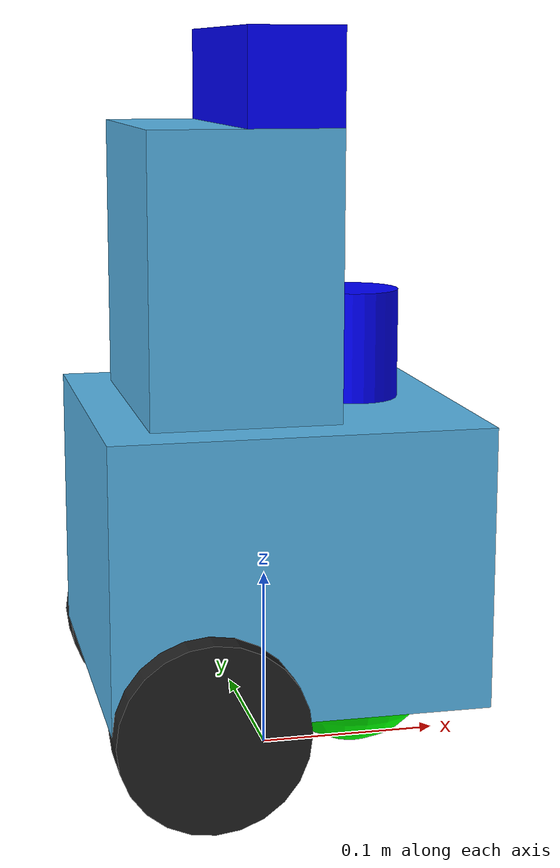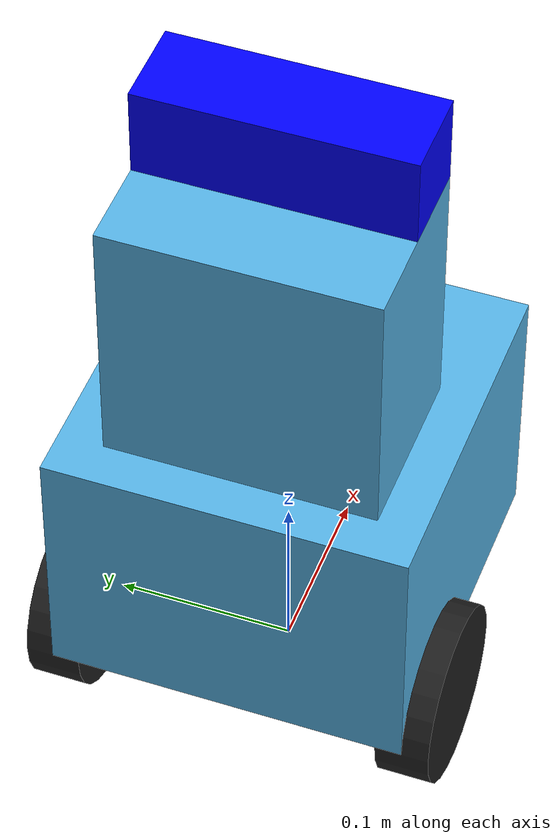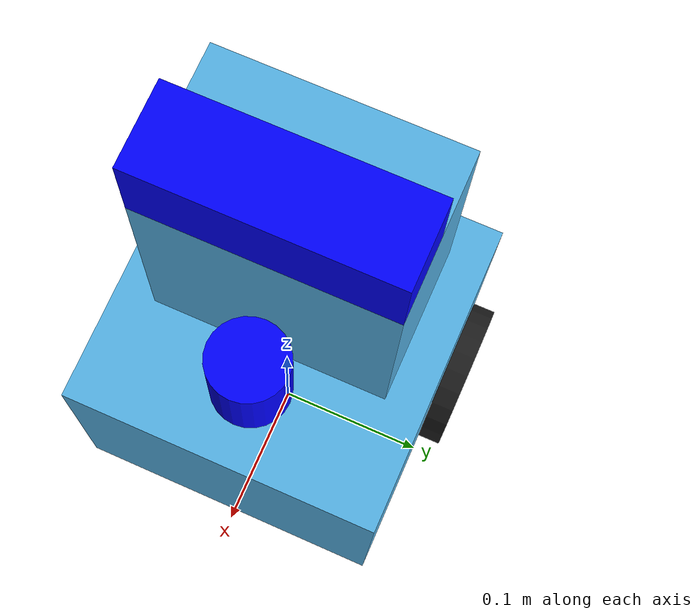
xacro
<?xml version="1.0"?>
<robot name="my_robo" xmlns:xacro="http://ros.org/wiki/xacro">

 <link name="base_footprint"/>

 <joint name="base_link_joint" type="fixed">
   <parent link="base_footprint"/>
   <child link="base_link"/>
   <origin xyz="0 0 0.125"/>
 </joint>

   <link name="base_link">
    <visual>
      <geometry>
        <box size="0.200 0.200 0.15"/>
      </geometry>
    </visual>

    <visual name="upper_base">
      <geometry>
        <box size="0.1 0.15 0.15"/>
      </geometry>
      <origin xyz="-0.025 0 0.15" rpy="0 0 0"/>
    </visual>

   <collision>
      <geometry>
        <box size="0.200 0.200 0.30"/>
      </geometry>
	<origin xyz="0 0 0.075" rpy="0 0 0"/>
    </collision>

   <inertial>
    <origin xyz="0 0 -0.1"/>
    <mass value="2.000"/>
    <inertia ixx="0.01" ixy="0" ixz="0" iyy="0.01" iyz="0" izz="0.01"/>
   </inertial>
<!-- for Solid cuboid of width w, height h, depth d, and mass m ,
       ixx=(m(h^2+d^2))/12 iyy=(m(w^2+d^2))/12 izz=(m(w^2+h^2))/12-->
  </link>

 <link name="left_wheel_link">
    <visual>
      <geometry>
        <cylinder radius="0.05" length="0.03"/>
      </geometry>
      <origin xyz="0 0 0" rpy="0 0 0"/>
      <material name="black"/>
    </visual>

    <collision>
      <geometry>
        <cylinder radius="0.05" length="0.03"/>
      </geometry>
    </collision>

   <inertial>
    <origin xyz="0 0 0"/>
    <mass value="0.300"/>
    <inertia ixx="0.00050025" ixy="0" ixz="0" iyy="0.00050025" iyz="0" izz="0.00096"/>
   </inertial>

  <!--for Solid cylinder of radius r, height h and mass m ,
       ixx=(m(3r^2+h^2))/12 iyy=(m(3r^2+h^2))/12 izz=(mr^2)/2-->

  </link>

  <joint name="left_wheel_joint" type="continuous">
    <parent link="base_link"/>
    <child link="left_wheel_link"/>
    <origin rpy="-1.5707 0 0" xyz="-0.05 0.100 -0.075"/>
    <axis xyz="0 0 1"/>
    <limit velocity="10.0" effort="0.3"/>	<!--decide mortor power-->
    <dynamics damping="0.1"/>                   <!--damping of axes of mortor-->
  </joint>

  <link name="right_wheel_link">
    <visual>
      <geometry>
        <cylinder radius="0.05" length="0.03"/>
      </geometry>
      <origin xyz="0 0 0" rpy="0 0 0"/>
      <material name="black"/>
    </visual>

    <collision>
      <geometry>
        <cylinder radius="0.05" length="0.03"/>
      </geometry>
    </collision>

   <inertial>
    <origin xyz="0 0 0"/>
    <mass value="0.300"/>
    <inertia ixx="0.00050025" ixy="0" ixz="0" iyy="0.00050025" iyz="0" izz="0.00096"/>
   </inertial>

  </link>

  <joint name="right_wheel_joint" type="continuous">
    <parent link="base_link"/>
    <child link="right_wheel_link"/>
    <origin rpy="1.5707 0 0" xyz="-0.05 -0.100 -0.075"/>
    <axis xyz="0 0 -1"/>
    <limit velocity="10.0" effort="0.3"/>
    <dynamics damping="0.1"/>
  </joint>

  <link name="caster_link">
    <visual>
      <geometry>
        <sphere radius="0.05"/>
      </geometry>
      <material name="green">
        <color rgba="0 1 0 1"/>
      </material>
    </visual>

    <collision>
      <geometry>
        <sphere radius="0.05"/>
      </geometry>
    </collision>

   <inertial>
    <origin xyz="0 0 0"/>
    <mass value="0.100"/>
    <inertia ixx="0.00016666666" ixy="0" ixz="0" iyy="0.00016666666"  iyz="0" izz="0.00016666666"/>
   </inertial>

  </link>

  <joint name="caster_joint" type="fixed">
   <parent link="base_link"/>
   <child link="caster_link"/>
   <origin xyz="0.050 0 -0.075"/>
 </joint>

 <!--sensor-->
  <xacro:macro name="laser_macro" params="parent prefix xyz">
    <joint name="${prefix}_joint" type="fixed">
      <parent link="${parent}"/>
      <child  link="${prefix}_link"/>
      <origin xyz="${xyz}" rpy="0 0 0"/>
    </joint>

    <link name="${prefix}_link">
      <visual>
        <origin xyz="0 0 0" rpy="0 0 0" />
        <geometry>
          <cylinder radius="0.025" length="0.07" />
        </geometry>
        <material name="blue">
          <color rgba="0 0 1 1"/>
	</material>
      </visual>

      <collision>
        <origin xyz="0 0 0" rpy="0 0 0"/>
        <geometry>
          <cylinder radius="0.02" length="0.06" />
        </geometry>
      </collision>

   <inertial>
    <origin xyz="0 0 -0.05"/>
    <mass value="0.160"/>
    <inertia ixx="0.00009" ixy="0" ixz="0" iyy="0.00009" iyz="0" izz="0.00005"/>
   </inertial>
     </link>

  <joint name="to_${prefix}_joint" type="fixed">
   <parent link="${prefix}_link"/>
   <child link="lasor"/>
   <origin xyz="0.025 0 0"/>
 </joint>

<link name="lasor"/>

<!--camera-->
    <link name="camera_base_link">
      <visual>
        <origin xyz="0 0 0" rpy="0 0 0" />
        <geometry>
          <box size="0.05 0.15 0.05"/>
        </geometry>
        <material name="blue">
          <color rgba="0 0 1 1"/>
	</material>
      </visual>
      <collision>
        <origin xyz="0 0 0" rpy="0 0 0"/>
        <geometry>
          <box size="0.05 0.15 0.05"/>
        </geometry>
      </collision>
     </link>

  <joint name="camera_base_joint" type="fixed">
   <parent link="base_link"/>
   <child link="camera_base_link"/>
   <origin xyz="0 0 0.25"/>
 </joint>

  <link name="camera"/>

  <joint name="camera_joint" type="fixed">
   <parent link="camera_base_link"/>
   <child link="camera"/>
   <origin xyz="0.025 0 0"/>
 </joint>

 <!-- ===============  Transmission =============== -->
 <transmission name="left_wheel_trans">
      <type>transmission_interface/SimpleTransmission</type>
      <joint name="left_wheel_joint">
  <hardwareInterface>hardware_interface/VelocityJointInterface</hardwareInterface>
      </joint>
   <actuator name="left_wheel_motor">
  <hardwareInterface>hardware_interface/VelocityJointInterface</hardwareInterface>
  <mechanicalReduction>30</mechanicalReduction>
      </actuator>
 </transmission>

 <transmission name="right_wheel_trans">
      <type>transmission_interface/SimpleTransmission</type>
      <joint name="right_wheel_joint">
  <hardwareInterface>hardware_interface/VelocityJointInterface</hardwareInterface>
      </joint>
   <actuator name="right_wheel_motor">
  <hardwareInterface>hardware_interface/VelocityJointInterface</hardwareInterface>
  <mechanicalReduction>30</mechanicalReduction>
      </actuator>
 </transmission>

  <!-- =============== Gazebo =============== -->

  <gazebo>
    <plugin name="differential_drive_controller" filename="libgazebo_ros_diff_drive.so">
      <leftJoint>left_wheel_joint</leftJoint>
      <rightJoint>right_wheel_joint</rightJoint>
      <robotBaseFrame>base_link</robotBaseFrame>
      <wheelSeparation>0.108</wheelSeparation>
      <wheelDiameter>0.024</wheelDiameter>
      <publishWheelJointState>true</publishWheelJointState>
      <legacyMode>false</legacyMode>
    </plugin>
  </gazebo>

 <gazebo reference="base_link">
   <selfCollide>true</selfCollide>
    <mu1 value="0.5" />
    <mu2 value="0.5" />
  </gazebo>

 <gazebo reference="left_wheel_link">
   <selfCollide>true</selfCollide>
    <mu1 value="0.9" />
    <mu2 value="0.9" />
  </gazebo>

 <gazebo reference="right_wheel_link">
   <selfCollide>true</selfCollide>
    <mu1 value="0.9" />
    <mu2 value="0.9" />
  </gazebo>

 <gazebo reference="caster_link">
   <selfCollide>true</selfCollide>
    <mu1 value="0.5" />
    <mu2 value="0.5" />
  </gazebo>

<!-- sensor-->
    <gazebo reference="lasor">
      <material>Gazebo/Red</material>
      <sensor type="ray" name="${prefix}_link">
        <pose>0 0 0 0 0 0</pose>
        <visualize>false</visualize>
        <update_rate>10</update_rate>
        <ray>
          <scan>
            <horizontal>
              <samples>683</samples>  <!--1024[points]*240[deg]/360[deg]-->
              <resolution>1</resolution>
              <min_angle>${radians(-120)}</min_angle>
              <max_angle>${radians( 120)}</max_angle>
            </horizontal>
          </scan>
          <range>
            <min>0.06</min>
            <max>4.0</max>
            <resolution>0.01</resolution>
          </range>
          <noise>
            <type>gaussian</type>
            <mean>0.0</mean>
            <stddev>0.01</stddev>
          </noise>
        </ray>
        <plugin name="gazebo_ros_lidar_controller" filename="libgazebo_ros_laser.so">
          <topicName>/laserscan</topicName>
          <frameName>${prefix}_link</frameName>
        </plugin>
      </sensor>
    </gazebo>

</xacro:macro>
<xacro:laser_macro parent="base_link" prefix="laser_sensor" xyz="0.05 0 0.1"/>

<!--CAMERA-->
    <gazebo reference="camera">
      <sensor type="depth" name="Kinectv2">
	<always_on>true</always_on>
        <update_rate>30.0</update_rate>

        <camera name="Kinectv2">
          <pose>0 0 0 0 0 0</pose>
          <horizontal_fov>1.221730</horizontal_fov> <!--viewing angle 70degree-->
          <image>
            <width>1920</width>
            <height>1080</height>
            <format>R8G8B8</format>
          </image>
          <clip>
            <near>0.5</near>
            <far>8.0</far>
          </clip>
          <noise>
            <type>gaussian</type>
            <mean>0.0</mean>
            <stddev>0.007</stddev>
          </noise>
        </camera>
      <plugin name="camera_controller" filename="libgazebo_ros_openni_kinect.so">
        <baseline>0.2</baseline>
        <alwaysOn>true</alwaysOn>
        <updateRate>30.0</updateRate>
        <cameraName>camera</cameraName>
        <frameName>camera</frameName>
        <imageTopicName>rgb/image_raw</imageTopicName>
        <depthImageTopicName>rgb/image_raw</depthImageTopicName>
        <pointCloudTopicName>depth/points</pointCloudTopicName>
        <cameraInfoTopicName>rgb/camera_info</cameraInfoTopicName>
        <depthImageCameraInfoTopicName>depth/camera_info</depthImageCameraInfoTopicName>
        <pointCloudCutoff>0.4</pointCloudCutoff>
            <hackBaseline>0.07</hackBaseline>
            <distortionK1>0.0</distortionK1>
            <distortionK2>0.0</distortionK2>
            <distortionK3>0.0</distortionK3>
            <distortionT1>0.0</distortionT1>
            <distortionT2>0.0</distortionT2>
        <CxPrime>0.0</CxPrime>
        <Cx>0.0</Cx>
        <Cy>0.0</Cy>
        <focalLength>0</focalLength>
        <hackBaseline>0</hackBaseline>
      </plugin>

      </sensor>
    </gazebo>

</robot>
